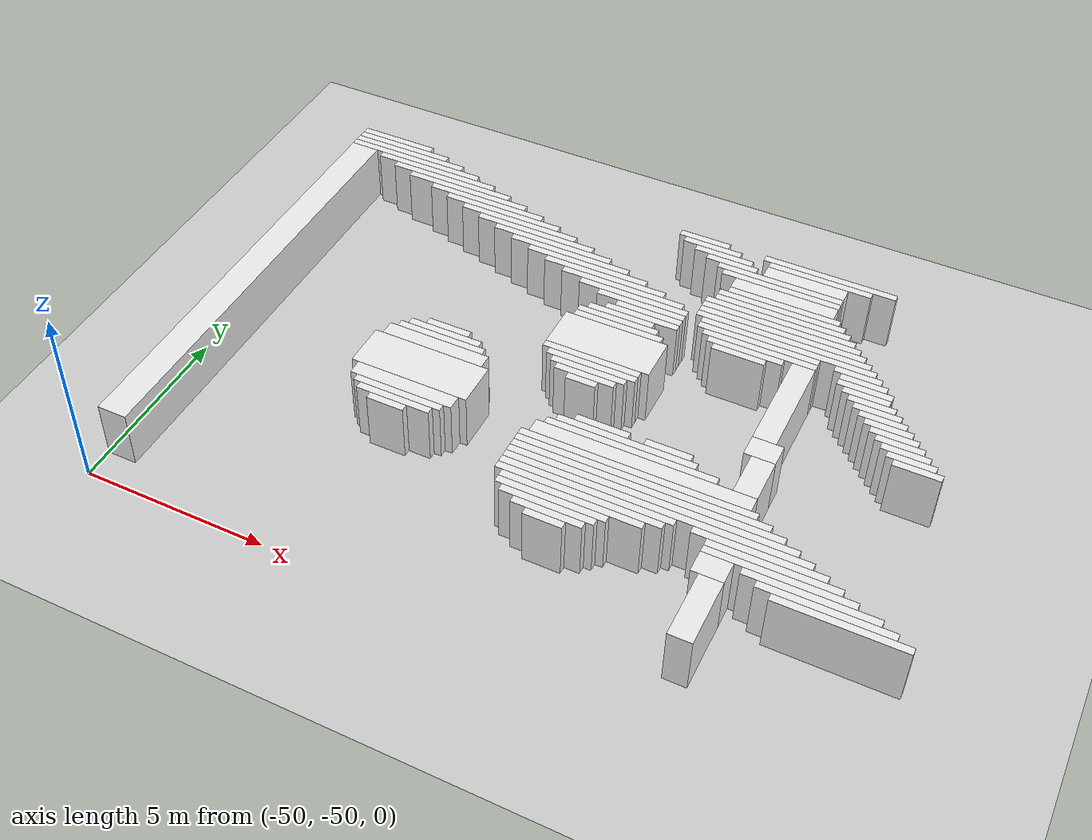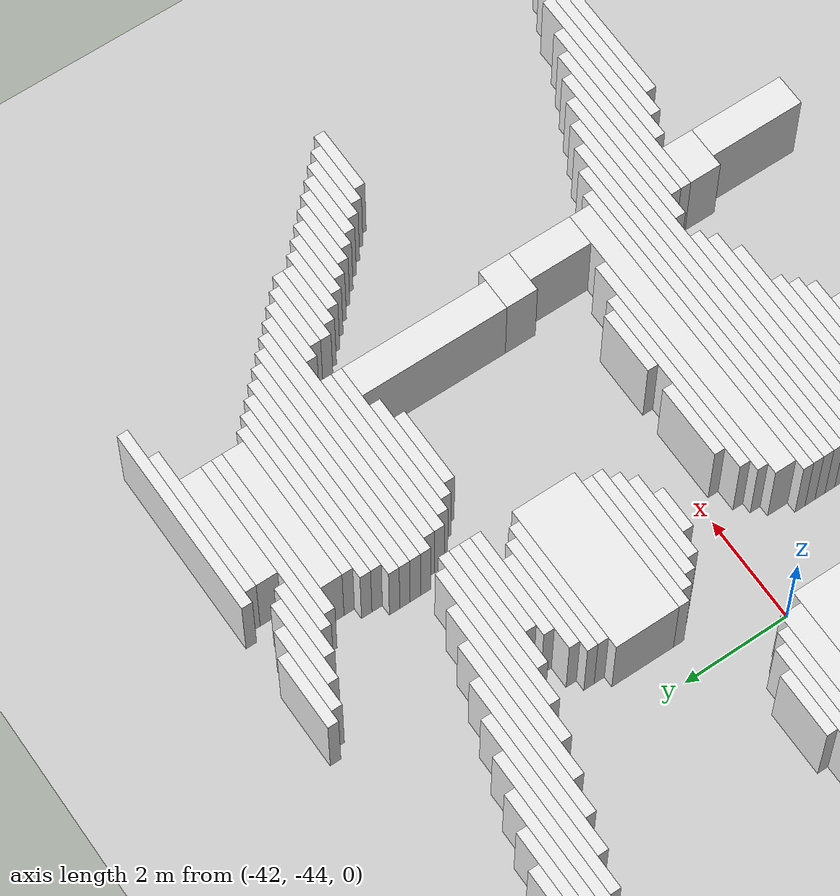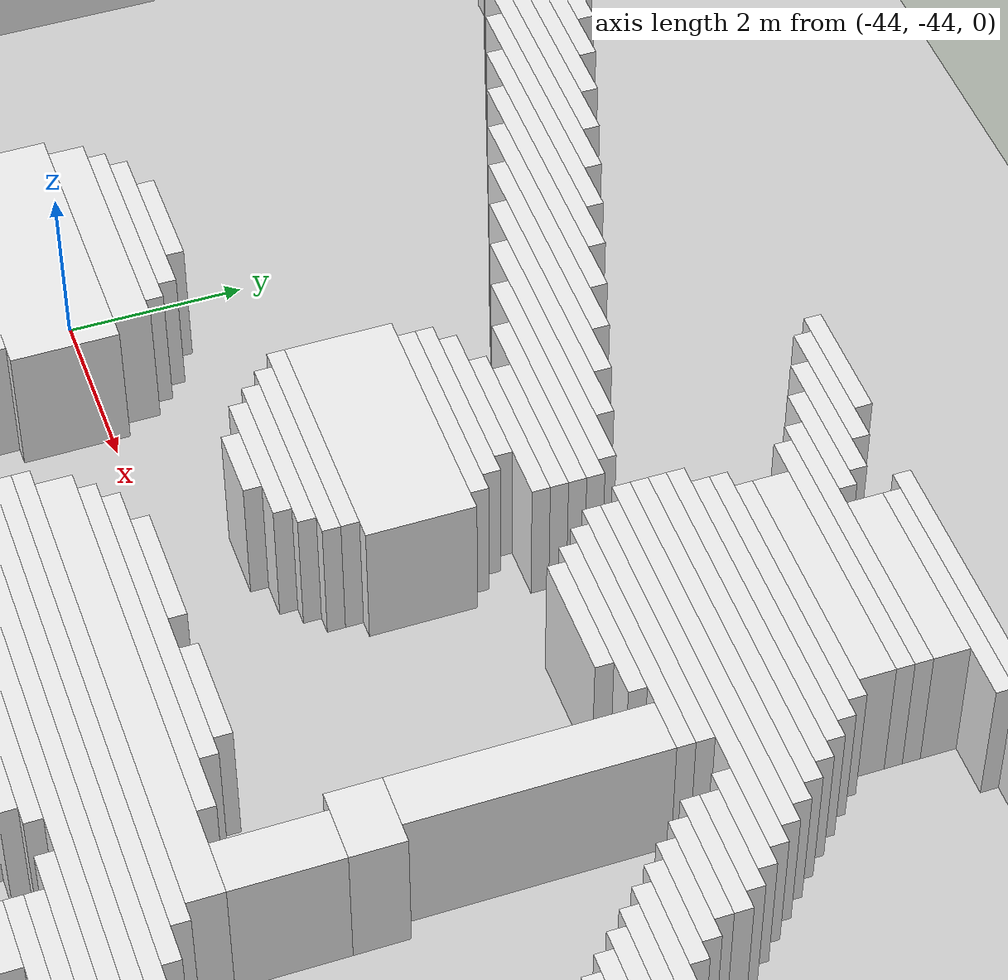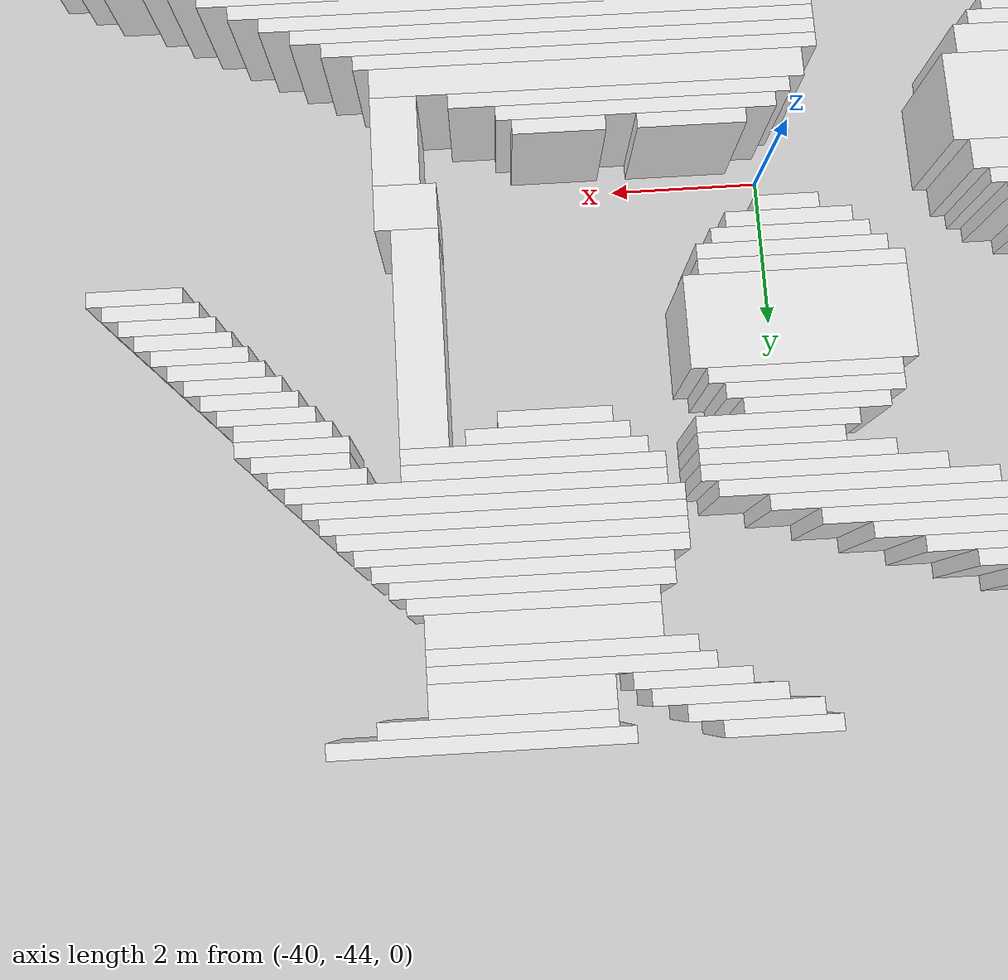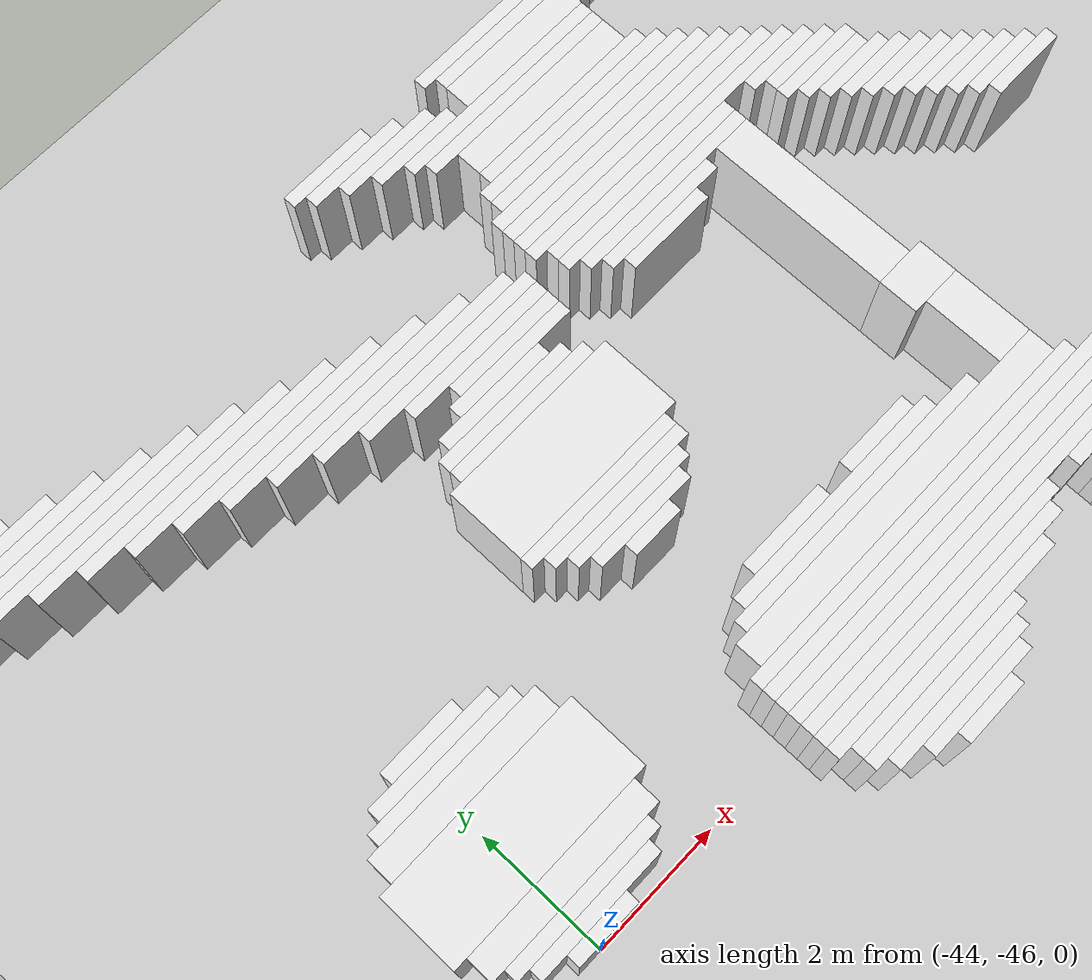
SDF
<sdf version="1.7">
 <world name="default">
  <model name="ground_plane">
   <static>1</static>
   <link name="link">
    <collision name="collision">
     <geometry><plane><normal>0 0 1</normal><size>120 120</size></plane></geometry>
    </collision>
    <visual name="visual">
     <geometry><plane><normal>0 0 1</normal><size>120 120</size></plane></geometry>
     <material>
      <script><uri>file://media/materials/scripts/gazebo.material</uri><name>Gazebo/Grey</name></script>
     </material>
    </visual>
   </link>
  </model>
  <model name="random_complex_03_model">
   <static>1</static>
   <link name="obs_2824">
    <pose>-48.9000 -36.5000 0.8000 0 0 0</pose>
    <collision name="obs_2824_col"><geometry><box><size>2.2000 0.2000 1.6000</size></box></geometry></collision>
    <visual name="obs_2824_vis">
     <geometry><box><size>2.2000 0.2000 1.6000</size></box></geometry>
     <material>
      <script><uri>file://media/materials/scripts/gazebo.material</uri><name>Gazebo/White</name></script>
     </material>
    </visual>
   </link>
   <link name="obs_2831">
    <pose>-48.6000 -36.7000 0.8000 0 0 0</pose>
    <collision name="obs_2831_col"><geometry><box><size>2.8000 0.2000 1.6000</size></box></geometry></collision>
    <visual name="obs_2831_vis">
     <geometry><box><size>2.8000 0.2000 1.6000</size></box></geometry>
     <material>
      <script><uri>file://media/materials/scripts/gazebo.material</uri><name>Gazebo/White</name></script>
     </material>
    </visual>
   </link>
   <link name="obs_2832">
    <pose>-39.3000 -36.7000 0.8000 0 0 0</pose>
    <collision name="obs_2832_col"><geometry><box><size>1.4000 0.2000 1.6000</size></box></geometry></collision>
    <visual name="obs_2832_vis">
     <geometry><box><size>1.4000 0.2000 1.6000</size></box></geometry>
     <material>
      <script><uri>file://media/materials/scripts/gazebo.material</uri><name>Gazebo/White</name></script>
     </material>
    </visual>
   </link>
   <link name="obs_2833">
    <pose>-35.8000 -36.7000 0.8000 0 0 0</pose>
    <collision name="obs_2833_col"><geometry><box><size>3.6000 0.2000 1.6000</size></box></geometry></collision>
    <visual name="obs_2833_vis">
     <geometry><box><size>3.6000 0.2000 1.6000</size></box></geometry>
     <material>
      <script><uri>file://media/materials/scripts/gazebo.material</uri><name>Gazebo/White</name></script>
     </material>
    </visual>
   </link>
   <link name="obs_2837">
    <pose>-48.3000 -36.9000 0.8000 0 0 0</pose>
    <collision name="obs_2837_col"><geometry><box><size>3.4000 0.2000 1.6000</size></box></geometry></collision>
    <visual name="obs_2837_vis">
     <geometry><box><size>3.4000 0.2000 1.6000</size></box></geometry>
     <material>
      <script><uri>file://media/materials/scripts/gazebo.material</uri><name>Gazebo/White</name></script>
     </material>
    </visual>
   </link>
   <link name="obs_2838">
    <pose>-39.0000 -36.9000 0.8000 0 0 0</pose>
    <collision name="obs_2838_col"><geometry><box><size>1.6000 0.2000 1.6000</size></box></geometry></collision>
    <visual name="obs_2838_vis">
     <geometry><box><size>1.6000 0.2000 1.6000</size></box></geometry>
     <material>
      <script><uri>file://media/materials/scripts/gazebo.material</uri><name>Gazebo/White</name></script>
     </material>
    </visual>
   </link>
   <link name="obs_2839">
    <pose>-36.0000 -36.9000 0.8000 0 0 0</pose>
    <collision name="obs_2839_col"><geometry><box><size>2.8000 0.2000 1.6000</size></box></geometry></collision>
    <visual name="obs_2839_vis">
     <geometry><box><size>2.8000 0.2000 1.6000</size></box></geometry>
     <material>
      <script><uri>file://media/materials/scripts/gazebo.material</uri><name>Gazebo/White</name></script>
     </material>
    </visual>
   </link>
   <link name="obs_2843">
    <pose>-48.0000 -37.1000 0.8000 0 0 0</pose>
    <collision name="obs_2843_col"><geometry><box><size>4.0000 0.2000 1.6000</size></box></geometry></collision>
    <visual name="obs_2843_vis">
     <geometry><box><size>4.0000 0.2000 1.6000</size></box></geometry>
     <material>
      <script><uri>file://media/materials/scripts/gazebo.material</uri><name>Gazebo/White</name></script>
     </material>
    </visual>
   </link>
   <link name="obs_2844">
    <pose>-38.6000 -37.1000 0.8000 0 0 0</pose>
    <collision name="obs_2844_col"><geometry><box><size>1.6000 0.2000 1.6000</size></box></geometry></collision>
    <visual name="obs_2844_vis">
     <geometry><box><size>1.6000 0.2000 1.6000</size></box></geometry>
     <material>
      <script><uri>file://media/materials/scripts/gazebo.material</uri><name>Gazebo/White</name></script>
     </material>
    </visual>
   </link>
   <link name="obs_2848">
    <pose>-36.3000 -37.2000 0.8000 0 0 0</pose>
    <collision name="obs_2848_col"><geometry><box><size>2.2000 0.4000 1.6000</size></box></geometry></collision>
    <visual name="obs_2848_vis">
     <geometry><box><size>2.2000 0.4000 1.6000</size></box></geometry>
     <material>
      <script><uri>file://media/materials/scripts/gazebo.material</uri><name>Gazebo/White</name></script>
     </material>
    </visual>
   </link>
   <link name="obs_2849">
    <pose>-47.2000 -37.3000 0.8000 0 0 0</pose>
    <collision name="obs_2849_col"><geometry><box><size>3.6000 0.2000 1.6000</size></box></geometry></collision>
    <visual name="obs_2849_vis">
     <geometry><box><size>3.6000 0.2000 1.6000</size></box></geometry>
     <material>
      <script><uri>file://media/materials/scripts/gazebo.material</uri><name>Gazebo/White</name></script>
     </material>
    </visual>
   </link>
   <link name="obs_2850">
    <pose>-38.3000 -37.3000 0.8000 0 0 0</pose>
    <collision name="obs_2850_col"><geometry><box><size>1.4000 0.2000 1.6000</size></box></geometry></collision>
    <visual name="obs_2850_vis">
     <geometry><box><size>1.4000 0.2000 1.6000</size></box></geometry>
     <material>
      <script><uri>file://media/materials/scripts/gazebo.material</uri><name>Gazebo/White</name></script>
     </material>
    </visual>
   </link>
   <link name="obs_2855">
    <pose>-46.6000 -37.5000 0.8000 0 0 0</pose>
    <collision name="obs_2855_col"><geometry><box><size>3.6000 0.2000 1.6000</size></box></geometry></collision>
    <visual name="obs_2855_vis">
     <geometry><box><size>3.6000 0.2000 1.6000</size></box></geometry>
     <material>
      <script><uri>file://media/materials/scripts/gazebo.material</uri><name>Gazebo/White</name></script>
     </material>
    </visual>
   </link>
   <link name="obs_2856">
    <pose>-36.9000 -37.5000 0.8000 0 0 0</pose>
    <collision name="obs_2856_col"><geometry><box><size>3.4000 0.2000 1.6000</size></box></geometry></collision>
    <visual name="obs_2856_vis">
     <geometry><box><size>3.4000 0.2000 1.6000</size></box></geometry>
     <material>
      <script><uri>file://media/materials/scripts/gazebo.material</uri><name>Gazebo/White</name></script>
     </material>
    </visual>
   </link>
   <link name="obs_2861">
    <pose>-46.0000 -37.7000 0.8000 0 0 0</pose>
    <collision name="obs_2861_col"><geometry><box><size>3.6000 0.2000 1.6000</size></box></geometry></collision>
    <visual name="obs_2861_vis">
     <geometry><box><size>3.6000 0.2000 1.6000</size></box></geometry>
     <material>
      <script><uri>file://media/materials/scripts/gazebo.material</uri><name>Gazebo/White</name></script>
     </material>
    </visual>
   </link>
   <link name="obs_2862">
    <pose>-36.8000 -37.7000 0.8000 0 0 0</pose>
    <collision name="obs_2862_col"><geometry><box><size>3.2000 0.2000 1.6000</size></box></geometry></collision>
    <visual name="obs_2862_vis">
     <geometry><box><size>3.2000 0.2000 1.6000</size></box></geometry>
     <material>
      <script><uri>file://media/materials/scripts/gazebo.material</uri><name>Gazebo/White</name></script>
     </material>
    </visual>
   </link>
   <link name="obs_2867">
    <pose>-45.3000 -37.9000 0.8000 0 0 0</pose>
    <collision name="obs_2867_col"><geometry><box><size>3.4000 0.2000 1.6000</size></box></geometry></collision>
    <visual name="obs_2867_vis">
     <geometry><box><size>3.4000 0.2000 1.6000</size></box></geometry>
     <material>
      <script><uri>file://media/materials/scripts/gazebo.material</uri><name>Gazebo/White</name></script>
     </material>
    </visual>
   </link>
   <link name="obs_2871">
    <pose>-36.6000 -38.0000 0.8000 0 0 0</pose>
    <collision name="obs_2871_col"><geometry><box><size>2.8000 0.4000 1.6000</size></box></geometry></collision>
    <visual name="obs_2871_vis">
     <geometry><box><size>2.8000 0.4000 1.6000</size></box></geometry>
     <material>
      <script><uri>file://media/materials/scripts/gazebo.material</uri><name>Gazebo/White</name></script>
     </material>
    </visual>
   </link>
   <link name="obs_2873">
    <pose>-44.7000 -38.1000 0.8000 0 0 0</pose>
    <collision name="obs_2873_col"><geometry><box><size>3.4000 0.2000 1.6000</size></box></geometry></collision>
    <visual name="obs_2873_vis">
     <geometry><box><size>3.4000 0.2000 1.6000</size></box></geometry>
     <material>
      <script><uri>file://media/materials/scripts/gazebo.material</uri><name>Gazebo/White</name></script>
     </material>
    </visual>
   </link>
   <link name="obs_2878">
    <pose>-44.1000 -38.3000 0.8000 0 0 0</pose>
    <collision name="obs_2878_col"><geometry><box><size>3.4000 0.2000 1.6000</size></box></geometry></collision>
    <visual name="obs_2878_vis">
     <geometry><box><size>3.4000 0.2000 1.6000</size></box></geometry>
     <material>
      <script><uri>file://media/materials/scripts/gazebo.material</uri><name>Gazebo/White</name></script>
     </material>
    </visual>
   </link>
   <link name="obs_2879">
    <pose>-36.5000 -38.3000 0.8000 0 0 0</pose>
    <collision name="obs_2879_col"><geometry><box><size>3.0000 0.2000 1.6000</size></box></geometry></collision>
    <visual name="obs_2879_vis">
     <geometry><box><size>3.0000 0.2000 1.6000</size></box></geometry>
     <material>
      <script><uri>file://media/materials/scripts/gazebo.material</uri><name>Gazebo/White</name></script>
     </material>
    </visual>
   </link>
   <link name="obs_2884">
    <pose>-43.5000 -38.5000 0.8000 0 0 0</pose>
    <collision name="obs_2884_col"><geometry><box><size>3.4000 0.2000 1.6000</size></box></geometry></collision>
    <visual name="obs_2884_vis">
     <geometry><box><size>3.4000 0.2000 1.6000</size></box></geometry>
     <material>
      <script><uri>file://media/materials/scripts/gazebo.material</uri><name>Gazebo/White</name></script>
     </material>
    </visual>
   </link>
   <link name="obs_2885">
    <pose>-36.5000 -38.5000 0.8000 0 0 0</pose>
    <collision name="obs_2885_col"><geometry><box><size>3.4000 0.2000 1.6000</size></box></geometry></collision>
    <visual name="obs_2885_vis">
     <geometry><box><size>3.4000 0.2000 1.6000</size></box></geometry>
     <material>
      <script><uri>file://media/materials/scripts/gazebo.material</uri><name>Gazebo/White</name></script>
     </material>
    </visual>
   </link>
   <link name="obs_2891">
    <pose>-42.9000 -38.7000 0.8000 0 0 0</pose>
    <collision name="obs_2891_col"><geometry><box><size>3.4000 0.2000 1.6000</size></box></geometry></collision>
    <visual name="obs_2891_vis">
     <geometry><box><size>3.4000 0.2000 1.6000</size></box></geometry>
     <material>
      <script><uri>file://media/materials/scripts/gazebo.material</uri><name>Gazebo/White</name></script>
     </material>
    </visual>
   </link>
   <link name="obs_2892">
    <pose>-36.4000 -38.7000 0.8000 0 0 0</pose>
    <collision name="obs_2892_col"><geometry><box><size>3.6000 0.2000 1.6000</size></box></geometry></collision>
    <visual name="obs_2892_vis">
     <geometry><box><size>3.6000 0.2000 1.6000</size></box></geometry>
     <material>
      <script><uri>file://media/materials/scripts/gazebo.material</uri><name>Gazebo/White</name></script>
     </material>
    </visual>
   </link>
   <link name="obs_2896">
    <pose>-42.3000 -38.9000 0.8000 0 0 0</pose>
    <collision name="obs_2896_col"><geometry><box><size>3.4000 0.2000 1.6000</size></box></geometry></collision>
    <visual name="obs_2896_vis">
     <geometry><box><size>3.4000 0.2000 1.6000</size></box></geometry>
     <material>
      <script><uri>file://media/materials/scripts/gazebo.material</uri><name>Gazebo/White</name></script>
     </material>
    </visual>
   </link>
   <link name="obs_2897">
    <pose>-36.4000 -38.9000 0.8000 0 0 0</pose>
    <collision name="obs_2897_col"><geometry><box><size>4.0000 0.2000 1.6000</size></box></geometry></collision>
    <visual name="obs_2897_vis">
     <geometry><box><size>4.0000 0.2000 1.6000</size></box></geometry>
     <material>
      <script><uri>file://media/materials/scripts/gazebo.material</uri><name>Gazebo/White</name></script>
     </material>
    </visual>
   </link>
   <link name="obs_2901">
    <pose>-41.7000 -39.1000 0.8000 0 0 0</pose>
    <collision name="obs_2901_col"><geometry><box><size>3.4000 0.2000 1.6000</size></box></geometry></collision>
    <visual name="obs_2901_vis">
     <geometry><box><size>3.4000 0.2000 1.6000</size></box></geometry>
     <material>
      <script><uri>file://media/materials/scripts/gazebo.material</uri><name>Gazebo/White</name></script>
     </material>
    </visual>
   </link>
   <link name="obs_2902">
    <pose>-36.3000 -39.1000 0.8000 0 0 0</pose>
    <collision name="obs_2902_col"><geometry><box><size>4.2000 0.2000 1.6000</size></box></geometry></collision>
    <visual name="obs_2902_vis">
     <geometry><box><size>4.2000 0.2000 1.6000</size></box></geometry>
     <material>
      <script><uri>file://media/materials/scripts/gazebo.material</uri><name>Gazebo/White</name></script>
     </material>
    </visual>
   </link>
   <link name="obs_2905">
    <pose>-41.1000 -39.3000 0.8000 0 0 0</pose>
    <collision name="obs_2905_col"><geometry><box><size>3.4000 0.2000 1.6000</size></box></geometry></collision>
    <visual name="obs_2905_vis">
     <geometry><box><size>3.4000 0.2000 1.6000</size></box></geometry>
     <material>
      <script><uri>file://media/materials/scripts/gazebo.material</uri><name>Gazebo/White</name></script>
     </material>
    </visual>
   </link>
   <link name="obs_2906">
    <pose>-36.2000 -39.3000 0.8000 0 0 0</pose>
    <collision name="obs_2906_col"><geometry><box><size>4.4000 0.2000 1.6000</size></box></geometry></collision>
    <visual name="obs_2906_vis">
     <geometry><box><size>4.4000 0.2000 1.6000</size></box></geometry>
     <material>
      <script><uri>file://media/materials/scripts/gazebo.material</uri><name>Gazebo/White</name></script>
     </material>
    </visual>
   </link>
   <link name="obs_2908">
    <pose>-40.5000 -39.5000 0.8000 0 0 0</pose>
    <collision name="obs_2908_col"><geometry><box><size>3.4000 0.2000 1.6000</size></box></geometry></collision>
    <visual name="obs_2908_vis">
     <geometry><box><size>3.4000 0.2000 1.6000</size></box></geometry>
     <material>
      <script><uri>file://media/materials/scripts/gazebo.material</uri><name>Gazebo/White</name></script>
     </material>
    </visual>
   </link>
   <link name="obs_2909">
    <pose>-36.1000 -39.5000 0.8000 0 0 0</pose>
    <collision name="obs_2909_col"><geometry><box><size>4.6000 0.2000 1.6000</size></box></geometry></collision>
    <visual name="obs_2909_vis">
     <geometry><box><size>4.6000 0.2000 1.6000</size></box></geometry>
     <material>
      <script><uri>file://media/materials/scripts/gazebo.material</uri><name>Gazebo/White</name></script>
     </material>
    </visual>
   </link>
   <link name="obs_2915">
    <pose>-40.1000 -39.7000 0.8000 0 0 0</pose>
    <collision name="obs_2915_col"><geometry><box><size>3.0000 0.2000 1.6000</size></box></geometry></collision>
    <visual name="obs_2915_vis">
     <geometry><box><size>3.0000 0.2000 1.6000</size></box></geometry>
     <material>
      <script><uri>file://media/materials/scripts/gazebo.material</uri><name>Gazebo/White</name></script>
     </material>
    </visual>
   </link>
   <link name="obs_2916">
    <pose>-35.9000 -39.7000 0.8000 0 0 0</pose>
    <collision name="obs_2916_col"><geometry><box><size>4.6000 0.2000 1.6000</size></box></geometry></collision>
    <visual name="obs_2916_vis">
     <geometry><box><size>4.6000 0.2000 1.6000</size></box></geometry>
     <material>
      <script><uri>file://media/materials/scripts/gazebo.material</uri><name>Gazebo/White</name></script>
     </material>
    </visual>
   </link>
   <link name="obs_2919">
    <pose>-39.8000 -39.9000 0.8000 0 0 0</pose>
    <collision name="obs_2919_col"><geometry><box><size>2.4000 0.2000 1.6000</size></box></geometry></collision>
    <visual name="obs_2919_vis">
     <geometry><box><size>2.4000 0.2000 1.6000</size></box></geometry>
     <material>
      <script><uri>file://media/materials/scripts/gazebo.material</uri><name>Gazebo/White</name></script>
     </material>
    </visual>
   </link>
   <link name="obs_2920">
    <pose>-36.6000 -39.9000 0.8000 0 0 0</pose>
    <collision name="obs_2920_col"><geometry><box><size>3.2000 0.2000 1.6000</size></box></geometry></collision>
    <visual name="obs_2920_vis">
     <geometry><box><size>3.2000 0.2000 1.6000</size></box></geometry>
     <material>
      <script><uri>file://media/materials/scripts/gazebo.material</uri><name>Gazebo/White</name></script>
     </material>
    </visual>
   </link>
   <link name="obs_2921">
    <pose>-34.0000 -39.9000 0.8000 0 0 0</pose>
    <collision name="obs_2921_col"><geometry><box><size>1.2000 0.2000 1.6000</size></box></geometry></collision>
    <visual name="obs_2921_vis">
     <geometry><box><size>1.2000 0.2000 1.6000</size></box></geometry>
     <material>
      <script><uri>file://media/materials/scripts/gazebo.material</uri><name>Gazebo/White</name></script>
     </material>
    </visual>
   </link>
   <link name="obs_2926">
    <pose>-39.5000 -40.1000 0.8000 0 0 0</pose>
    <collision name="obs_2926_col"><geometry><box><size>1.8000 0.2000 1.6000</size></box></geometry></collision>
    <visual name="obs_2926_vis">
     <geometry><box><size>1.8000 0.2000 1.6000</size></box></geometry>
     <material>
      <script><uri>file://media/materials/scripts/gazebo.material</uri><name>Gazebo/White</name></script>
     </material>
    </visual>
   </link>
   <link name="obs_2927">
    <pose>-36.5000 -40.1000 0.8000 0 0 0</pose>
    <collision name="obs_2927_col"><geometry><box><size>3.0000 0.2000 1.6000</size></box></geometry></collision>
    <visual name="obs_2927_vis">
     <geometry><box><size>3.0000 0.2000 1.6000</size></box></geometry>
     <material>
      <script><uri>file://media/materials/scripts/gazebo.material</uri><name>Gazebo/White</name></script>
     </material>
    </visual>
   </link>
   <link name="obs_2928">
    <pose>-33.8000 -40.1000 0.8000 0 0 0</pose>
    <collision name="obs_2928_col"><geometry><box><size>1.2000 0.2000 1.6000</size></box></geometry></collision>
    <visual name="obs_2928_vis">
     <geometry><box><size>1.2000 0.2000 1.6000</size></box></geometry>
     <material>
      <script><uri>file://media/materials/scripts/gazebo.material</uri><name>Gazebo/White</name></script>
     </material>
    </visual>
   </link>
   <link name="obs_2932">
    <pose>-39.6000 -40.3000 0.8000 0 0 0</pose>
    <collision name="obs_2932_col"><geometry><box><size>2.0000 0.2000 1.6000</size></box></geometry></collision>
    <visual name="obs_2932_vis">
     <geometry><box><size>2.0000 0.2000 1.6000</size></box></geometry>
     <material>
      <script><uri>file://media/materials/scripts/gazebo.material</uri><name>Gazebo/White</name></script>
     </material>
    </visual>
   </link>
   <link name="obs_2933">
    <pose>-36.8000 -40.3000 0.8000 0 0 0</pose>
    <collision name="obs_2933_col"><geometry><box><size>2.0000 0.2000 1.6000</size></box></geometry></collision>
    <visual name="obs_2933_vis">
     <geometry><box><size>2.0000 0.2000 1.6000</size></box></geometry>
     <material>
      <script><uri>file://media/materials/scripts/gazebo.material</uri><name>Gazebo/White</name></script>
     </material>
    </visual>
   </link>
   <link name="obs_2934">
    <pose>-33.7000 -40.3000 0.8000 0 0 0</pose>
    <collision name="obs_2934_col"><geometry><box><size>1.4000 0.2000 1.6000</size></box></geometry></collision>
    <visual name="obs_2934_vis">
     <geometry><box><size>1.4000 0.2000 1.6000</size></box></geometry>
     <material>
      <script><uri>file://media/materials/scripts/gazebo.material</uri><name>Gazebo/White</name></script>
     </material>
    </visual>
   </link>
   <link name="obs_2938">
    <pose>-40.1000 -40.5000 0.8000 0 0 0</pose>
    <collision name="obs_2938_col"><geometry><box><size>1.8000 0.2000 1.6000</size></box></geometry></collision>
    <visual name="obs_2938_vis">
     <geometry><box><size>1.8000 0.2000 1.6000</size></box></geometry>
     <material>
      <script><uri>file://media/materials/scripts/gazebo.material</uri><name>Gazebo/White</name></script>
     </material>
    </visual>
   </link>
   <link name="obs_2939">
    <pose>-36.9000 -40.5000 0.8000 0 0 0</pose>
    <collision name="obs_2939_col"><geometry><box><size>1.4000 0.2000 1.6000</size></box></geometry></collision>
    <visual name="obs_2939_vis">
     <geometry><box><size>1.4000 0.2000 1.6000</size></box></geometry>
     <material>
      <script><uri>file://media/materials/scripts/gazebo.material</uri><name>Gazebo/White</name></script>
     </material>
    </visual>
   </link>
   <link name="obs_2940">
    <pose>-33.6000 -40.5000 0.8000 0 0 0</pose>
    <collision name="obs_2940_col"><geometry><box><size>1.2000 0.2000 1.6000</size></box></geometry></collision>
    <visual name="obs_2940_vis">
     <geometry><box><size>1.2000 0.2000 1.6000</size></box></geometry>
     <material>
      <script><uri>file://media/materials/scripts/gazebo.material</uri><name>Gazebo/White</name></script>
     </material>
    </visual>
   </link>
   <link name="obs_2944">
    <pose>-40.1000 -40.7000 0.8000 0 0 0</pose>
    <collision name="obs_2944_col"><geometry><box><size>2.2000 0.2000 1.6000</size></box></geometry></collision>
    <visual name="obs_2944_vis">
     <geometry><box><size>2.2000 0.2000 1.6000</size></box></geometry>
     <material>
      <script><uri>file://media/materials/scripts/gazebo.material</uri><name>Gazebo/White</name></script>
     </material>
    </visual>
   </link>
   <link name="obs_2945">
    <pose>-33.4000 -40.7000 0.8000 0 0 0</pose>
    <collision name="obs_2945_col"><geometry><box><size>1.2000 0.2000 1.6000</size></box></geometry></collision>
    <visual name="obs_2945_vis">
     <geometry><box><size>1.2000 0.2000 1.6000</size></box></geometry>
     <material>
      <script><uri>file://media/materials/scripts/gazebo.material</uri><name>Gazebo/White</name></script>
     </material>
    </visual>
   </link>
   <link name="obs_2949">
    <pose>-40.0000 -40.9000 0.8000 0 0 0</pose>
    <collision name="obs_2949_col"><geometry><box><size>2.4000 0.2000 1.6000</size></box></geometry></collision>
    <visual name="obs_2949_vis">
     <geometry><box><size>2.4000 0.2000 1.6000</size></box></geometry>
     <material>
      <script><uri>file://media/materials/scripts/gazebo.material</uri><name>Gazebo/White</name></script>
     </material>
    </visual>
   </link>
   <link name="obs_2950">
    <pose>-33.2000 -40.9000 0.8000 0 0 0</pose>
    <collision name="obs_2950_col"><geometry><box><size>1.2000 0.2000 1.6000</size></box></geometry></collision>
    <visual name="obs_2950_vis">
     <geometry><box><size>1.2000 0.2000 1.6000</size></box></geometry>
     <material>
      <script><uri>file://media/materials/scripts/gazebo.material</uri><name>Gazebo/White</name></script>
     </material>
    </visual>
   </link>
   <link name="obs_2955">
    <pose>-33.0000 -41.1000 0.8000 0 0 0</pose>
    <collision name="obs_2955_col"><geometry><box><size>1.2000 0.2000 1.6000</size></box></geometry></collision>
    <visual name="obs_2955_vis">
     <geometry><box><size>1.2000 0.2000 1.6000</size></box></geometry>
     <material>
      <script><uri>file://media/materials/scripts/gazebo.material</uri><name>Gazebo/White</name></script>
     </material>
    </visual>
   </link>
   <link name="obs_2959">
    <pose>-32.8000 -41.3000 0.8000 0 0 0</pose>
    <collision name="obs_2959_col"><geometry><box><size>1.2000 0.2000 1.6000</size></box></geometry></collision>
    <visual name="obs_2959_vis">
     <geometry><box><size>1.2000 0.2000 1.6000</size></box></geometry>
     <material>
      <script><uri>file://media/materials/scripts/gazebo.material</uri><name>Gazebo/White</name></script>
     </material>
    </visual>
   </link>
   <link name="obs_2963">
    <pose>-32.6000 -41.5000 0.8000 0 0 0</pose>
    <collision name="obs_2963_col"><geometry><box><size>1.2000 0.2000 1.6000</size></box></geometry></collision>
    <visual name="obs_2963_vis">
     <geometry><box><size>1.2000 0.2000 1.6000</size></box></geometry>
     <material>
      <script><uri>file://media/materials/scripts/gazebo.material</uri><name>Gazebo/White</name></script>
     </material>
    </visual>
   </link>
   <link name="obs_2966">
    <pose>-32.4000 -41.7000 0.8000 0 0 0</pose>
    <collision name="obs_2966_col"><geometry><box><size>1.2000 0.2000 1.6000</size></box></geometry></collision>
    <visual name="obs_2966_vis">
     <geometry><box><size>1.2000 0.2000 1.6000</size></box></geometry>
     <material>
      <script><uri>file://media/materials/scripts/gazebo.material</uri><name>Gazebo/White</name></script>
     </material>
    </visual>
   </link>
   <link name="obs_2969">
    <pose>-32.2000 -41.9000 0.8000 0 0 0</pose>
    <collision name="obs_2969_col"><geometry><box><size>1.2000 0.2000 1.6000</size></box></geometry></collision>
    <visual name="obs_2969_vis">
     <geometry><box><size>1.2000 0.2000 1.6000</size></box></geometry>
     <material>
      <script><uri>file://media/materials/scripts/gazebo.material</uri><name>Gazebo/White</name></script>
     </material>
    </visual>
   </link>
   <link name="obs_2972">
    <pose>-40.0000 -41.6000 0.8000 0 0 0</pose>
    <collision name="obs_2972_col"><geometry><box><size>2.8000 1.2000 1.6000</size></box></geometry></collision>
    <visual name="obs_2972_vis">
     <geometry><box><size>2.8000 1.2000 1.6000</size></box></geometry>
     <material>
      <script><uri>file://media/materials/scripts/gazebo.material</uri><name>Gazebo/White</name></script>
     </material>
    </visual>
   </link>
   <link name="obs_2974">
    <pose>-32.0000 -42.1000 0.8000 0 0 0</pose>
    <collision name="obs_2974_col"><geometry><box><size>1.2000 0.2000 1.6000</size></box></geometry></collision>
    <visual name="obs_2974_vis">
     <geometry><box><size>1.2000 0.2000 1.6000</size></box></geometry>
     <material>
      <script><uri>file://media/materials/scripts/gazebo.material</uri><name>Gazebo/White</name></script>
     </material>
    </visual>
   </link>
   <link name="obs_2977">
    <pose>-40.1000 -42.3000 0.8000 0 0 0</pose>
    <collision name="obs_2977_col"><geometry><box><size>2.6000 0.2000 1.6000</size></box></geometry></collision>
    <visual name="obs_2977_vis">
     <geometry><box><size>2.6000 0.2000 1.6000</size></box></geometry>
     <material>
      <script><uri>file://media/materials/scripts/gazebo.material</uri><name>Gazebo/White</name></script>
     </material>
    </visual>
   </link>
   <link name="obs_2978">
    <pose>-31.8000 -42.3000 0.8000 0 0 0</pose>
    <collision name="obs_2978_col"><geometry><box><size>1.2000 0.2000 1.6000</size></box></geometry></collision>
    <visual name="obs_2978_vis">
     <geometry><box><size>1.2000 0.2000 1.6000</size></box></geometry>
     <material>
      <script><uri>file://media/materials/scripts/gazebo.material</uri><name>Gazebo/White</name></script>
     </material>
    </visual>
   </link>
   <link name="obs_2982">
    <pose>-40.0000 -42.5000 0.8000 0 0 0</pose>
    <collision name="obs_2982_col"><geometry><box><size>2.4000 0.2000 1.6000</size></box></geometry></collision>
    <visual name="obs_2982_vis">
     <geometry><box><size>2.4000 0.2000 1.6000</size></box></geometry>
     <material>
      <script><uri>file://media/materials/scripts/gazebo.material</uri><name>Gazebo/White</name></script>
     </material>
    </visual>
   </link>
   <link name="obs_2987">
    <pose>-40.0000 -42.7000 0.8000 0 0 0</pose>
    <collision name="obs_2987_col"><geometry><box><size>2.0000 0.2000 1.6000</size></box></geometry></collision>
    <visual name="obs_2987_vis">
     <geometry><box><size>2.0000 0.2000 1.6000</size></box></geometry>
     <material>
      <script><uri>file://media/materials/scripts/gazebo.material</uri><name>Gazebo/White</name></script>
     </material>
    </visual>
   </link>
   <link name="obs_2993">
    <pose>-35.3000 -41.6000 0.8000 0 0 0</pose>
    <collision name="obs_2993_col"><geometry><box><size>0.6000 2.8000 1.6000</size></box></geometry></collision>
    <visual name="obs_2993_vis">
     <geometry><box><size>0.6000 2.8000 1.6000</size></box></geometry>
     <material>
      <script><uri>file://media/materials/scripts/gazebo.material</uri><name>Gazebo/White</name></script>
     </material>
    </visual>
   </link>
   <link name="obs_2994">
    <pose>-43.8000 -42.9000 0.8000 0 0 0</pose>
    <collision name="obs_2994_col"><geometry><box><size>1.2000 0.2000 1.6000</size></box></geometry></collision>
    <visual name="obs_2994_vis">
     <geometry><box><size>1.2000 0.2000 1.6000</size></box></geometry>
     <material>
      <script><uri>file://media/materials/scripts/gazebo.material</uri><name>Gazebo/White</name></script>
     </material>
    </visual>
   </link>
   <link name="obs_2995">
    <pose>-40.0000 -42.9000 0.8000 0 0 0</pose>
    <collision name="obs_2995_col"><geometry><box><size>1.6000 0.2000 1.6000</size></box></geometry></collision>
    <visual name="obs_2995_vis">
     <geometry><box><size>1.6000 0.2000 1.6000</size></box></geometry>
     <material>
      <script><uri>file://media/materials/scripts/gazebo.material</uri><name>Gazebo/White</name></script>
     </material>
    </visual>
   </link>
   <link name="obs_2999">
    <pose>-43.8000 -43.1000 0.8000 0 0 0</pose>
    <collision name="obs_2999_col"><geometry><box><size>2.0000 0.2000 1.6000</size></box></geometry></collision>
    <visual name="obs_2999_vis">
     <geometry><box><size>2.0000 0.2000 1.6000</size></box></geometry>
     <material>
      <script><uri>file://media/materials/scripts/gazebo.material</uri><name>Gazebo/White</name></script>
     </material>
    </visual>
   </link>
   <link name="obs_3000">
    <pose>-40.0000 -43.1000 0.8000 0 0 0</pose>
    <collision name="obs_3000_col"><geometry><box><size>0.8000 0.2000 1.6000</size></box></geometry></collision>
    <visual name="obs_3000_vis">
     <geometry><box><size>0.8000 0.2000 1.6000</size></box></geometry>
     <material>
      <script><uri>file://media/materials/scripts/gazebo.material</uri><name>Gazebo/White</name></script>
     </material>
    </visual>
   </link>
   <link name="obs_3004">
    <pose>-43.8000 -43.3000 0.8000 0 0 0</pose>
    <collision name="obs_3004_col"><geometry><box><size>2.4000 0.2000 1.6000</size></box></geometry></collision>
    <visual name="obs_3004_vis">
     <geometry><box><size>2.4000 0.2000 1.6000</size></box></geometry>
     <material>
      <script><uri>file://media/materials/scripts/gazebo.material</uri><name>Gazebo/White</name></script>
     </material>
    </visual>
   </link>
   <link name="obs_3008">
    <pose>-35.2000 -43.3000 0.8000 0 0 0</pose>
    <collision name="obs_3008_col"><geometry><box><size>0.8000 0.6000 1.6000</size></box></geometry></collision>
    <visual name="obs_3008_vis">
     <geometry><box><size>0.8000 0.6000 1.6000</size></box></geometry>
     <material>
      <script><uri>file://media/materials/scripts/gazebo.material</uri><name>Gazebo/White</name></script>
     </material>
    </visual>
   </link>
   <link name="obs_3013">
    <pose>-43.8000 -43.6000 0.8000 0 0 0</pose>
    <collision name="obs_3013_col"><geometry><box><size>2.8000 0.4000 1.6000</size></box></geometry></collision>
    <visual name="obs_3013_vis">
     <geometry><box><size>2.8000 0.4000 1.6000</size></box></geometry>
     <material>
      <script><uri>file://media/materials/scripts/gazebo.material</uri><name>Gazebo/White</name></script>
     </material>
    </visual>
   </link>
   <link name="obs_3027">
    <pose>-38.9000 -44.3000 0.8000 0 0 0</pose>
    <collision name="obs_3027_col"><geometry><box><size>1.4000 0.2000 1.6000</size></box></geometry></collision>
    <visual name="obs_3027_vis">
     <geometry><box><size>1.4000 0.2000 1.6000</size></box></geometry>
     <material>
      <script><uri>file://media/materials/scripts/gazebo.material</uri><name>Gazebo/White</name></script>
     </material>
    </visual>
   </link>
   <link name="obs_3028">
    <pose>-37.2000 -44.3000 0.8000 0 0 0</pose>
    <collision name="obs_3028_col"><geometry><box><size>1.2000 0.2000 1.6000</size></box></geometry></collision>
    <visual name="obs_3028_vis">
     <geometry><box><size>1.2000 0.2000 1.6000</size></box></geometry>
     <material>
      <script><uri>file://media/materials/scripts/gazebo.material</uri><name>Gazebo/White</name></script>
     </material>
    </visual>
   </link>
   <link name="obs_3034">
    <pose>-38.2000 -44.5000 0.8000 0 0 0</pose>
    <collision name="obs_3034_col"><geometry><box><size>3.6000 0.2000 1.6000</size></box></geometry></collision>
    <visual name="obs_3034_vis">
     <geometry><box><size>3.6000 0.2000 1.6000</size></box></geometry>
     <material>
      <script><uri>file://media/materials/scripts/gazebo.material</uri><name>Gazebo/White</name></script>
     </material>
    </visual>
   </link>
   <link name="obs_3040">
    <pose>-35.1000 -44.2000 0.8000 0 0 0</pose>
    <collision name="obs_3040_col"><geometry><box><size>0.6000 1.2000 1.6000</size></box></geometry></collision>
    <visual name="obs_3040_vis">
     <geometry><box><size>0.6000 1.2000 1.6000</size></box></geometry>
     <material>
      <script><uri>file://media/materials/scripts/gazebo.material</uri><name>Gazebo/White</name></script>
     </material>
    </visual>
   </link>
   <link name="obs_3041">
    <pose>-38.0000 -44.7000 0.8000 0 0 0</pose>
    <collision name="obs_3041_col"><geometry><box><size>4.4000 0.2000 1.6000</size></box></geometry></collision>
    <visual name="obs_3041_vis">
     <geometry><box><size>4.4000 0.2000 1.6000</size></box></geometry>
     <material>
      <script><uri>file://media/materials/scripts/gazebo.material</uri><name>Gazebo/White</name></script>
     </material>
    </visual>
   </link>
   <link name="obs_3046">
    <pose>-43.8000 -44.4000 0.8000 0 0 0</pose>
    <collision name="obs_3046_col"><geometry><box><size>3.2000 1.2000 1.6000</size></box></geometry></collision>
    <visual name="obs_3046_vis">
     <geometry><box><size>3.2000 1.2000 1.6000</size></box></geometry>
     <material>
      <script><uri>file://media/materials/scripts/gazebo.material</uri><name>Gazebo/White</name></script>
     </material>
    </visual>
   </link>
   <link name="obs_3051">
    <pose>-37.6000 -45.0000 0.8000 0 0 0</pose>
    <collision name="obs_3051_col"><geometry><box><size>5.6000 0.4000 1.6000</size></box></geometry></collision>
    <visual name="obs_3051_vis">
     <geometry><box><size>5.6000 0.4000 1.6000</size></box></geometry>
     <material>
      <script><uri>file://media/materials/scripts/gazebo.material</uri><name>Gazebo/White</name></script>
     </material>
    </visual>
   </link>
   <link name="obs_3056">
    <pose>-43.8000 -45.2000 0.8000 0 0 0</pose>
    <collision name="obs_3056_col"><geometry><box><size>2.8000 0.4000 1.6000</size></box></geometry></collision>
    <visual name="obs_3056_vis">
     <geometry><box><size>2.8000 0.4000 1.6000</size></box></geometry>
     <material>
      <script><uri>file://media/materials/scripts/gazebo.material</uri><name>Gazebo/White</name></script>
     </material>
    </visual>
   </link>
   <link name="obs_3057">
    <pose>-37.6000 -45.3000 0.8000 0 0 0</pose>
    <collision name="obs_3057_col"><geometry><box><size>6.0000 0.2000 1.6000</size></box></geometry></collision>
    <visual name="obs_3057_vis">
     <geometry><box><size>6.0000 0.2000 1.6000</size></box></geometry>
     <material>
      <script><uri>file://media/materials/scripts/gazebo.material</uri><name>Gazebo/White</name></script>
     </material>
    </visual>
   </link>
   <link name="obs_3061">
    <pose>-43.8000 -45.5000 0.8000 0 0 0</pose>
    <collision name="obs_3061_col"><geometry><box><size>2.4000 0.2000 1.6000</size></box></geometry></collision>
    <visual name="obs_3061_vis">
     <geometry><box><size>2.4000 0.2000 1.6000</size></box></geometry>
     <material>
      <script><uri>file://media/materials/scripts/gazebo.material</uri><name>Gazebo/White</name></script>
     </material>
    </visual>
   </link>
   <link name="obs_3062">
    <pose>-37.4000 -45.5000 0.8000 0 0 0</pose>
    <collision name="obs_3062_col"><geometry><box><size>6.4000 0.2000 1.6000</size></box></geometry></collision>
    <visual name="obs_3062_vis">
     <geometry><box><size>6.4000 0.2000 1.6000</size></box></geometry>
     <material>
      <script><uri>file://media/materials/scripts/gazebo.material</uri><name>Gazebo/White</name></script>
     </material>
    </visual>
   </link>
   <link name="obs_3067">
    <pose>-43.8000 -45.7000 0.8000 0 0 0</pose>
    <collision name="obs_3067_col"><geometry><box><size>2.0000 0.2000 1.6000</size></box></geometry></collision>
    <visual name="obs_3067_vis">
     <geometry><box><size>2.0000 0.2000 1.6000</size></box></geometry>
     <material>
      <script><uri>file://media/materials/scripts/gazebo.material</uri><name>Gazebo/White</name></script>
     </material>
    </visual>
   </link>
   <link name="obs_3068">
    <pose>-37.2000 -45.7000 0.8000 0 0 0</pose>
    <collision name="obs_3068_col"><geometry><box><size>6.8000 0.2000 1.6000</size></box></geometry></collision>
    <visual name="obs_3068_vis">
     <geometry><box><size>6.8000 0.2000 1.6000</size></box></geometry>
     <material>
      <script><uri>file://media/materials/scripts/gazebo.material</uri><name>Gazebo/White</name></script>
     </material>
    </visual>
   </link>
   <link name="obs_3074">
    <pose>-43.9000 -45.9000 0.8000 0 0 0</pose>
    <collision name="obs_3074_col"><geometry><box><size>1.0000 0.2000 1.6000</size></box></geometry></collision>
    <visual name="obs_3074_vis">
     <geometry><box><size>1.0000 0.2000 1.6000</size></box></geometry>
     <material>
      <script><uri>file://media/materials/scripts/gazebo.material</uri><name>Gazebo/White</name></script>
     </material>
    </visual>
   </link>
   <link name="obs_3075">
    <pose>-37.0000 -45.9000 0.8000 0 0 0</pose>
    <collision name="obs_3075_col"><geometry><box><size>7.2000 0.2000 1.6000</size></box></geometry></collision>
    <visual name="obs_3075_vis">
     <geometry><box><size>7.2000 0.2000 1.6000</size></box></geometry>
     <material>
      <script><uri>file://media/materials/scripts/gazebo.material</uri><name>Gazebo/White</name></script>
     </material>
    </visual>
   </link>
   <link name="obs_3083">
    <pose>-36.8000 -46.1000 0.8000 0 0 0</pose>
    <collision name="obs_3083_col"><geometry><box><size>7.6000 0.2000 1.6000</size></box></geometry></collision>
    <visual name="obs_3083_vis">
     <geometry><box><size>7.6000 0.2000 1.6000</size></box></geometry>
     <material>
      <script><uri>file://media/materials/scripts/gazebo.material</uri><name>Gazebo/White</name></script>
     </material>
    </visual>
   </link>
   <link name="obs_3087">
    <pose>-38.4000 -46.3000 0.8000 0 0 0</pose>
    <collision name="obs_3087_col"><geometry><box><size>4.4000 0.2000 1.6000</size></box></geometry></collision>
    <visual name="obs_3087_vis">
     <geometry><box><size>4.4000 0.2000 1.6000</size></box></geometry>
     <material>
      <script><uri>file://media/materials/scripts/gazebo.material</uri><name>Gazebo/White</name></script>
     </material>
    </visual>
   </link>
   <link name="obs_3088">
    <pose>-34.2000 -46.3000 0.8000 0 0 0</pose>
    <collision name="obs_3088_col"><geometry><box><size>3.2000 0.2000 1.6000</size></box></geometry></collision>
    <visual name="obs_3088_vis">
     <geometry><box><size>3.2000 0.2000 1.6000</size></box></geometry>
     <material>
      <script><uri>file://media/materials/scripts/gazebo.material</uri><name>Gazebo/White</name></script>
     </material>
    </visual>
   </link>
   <link name="obs_3094">
    <pose>-38.5000 -46.5000 0.8000 0 0 0</pose>
    <collision name="obs_3094_col"><geometry><box><size>4.2000 0.2000 1.6000</size></box></geometry></collision>
    <visual name="obs_3094_vis">
     <geometry><box><size>4.2000 0.2000 1.6000</size></box></geometry>
     <material>
      <script><uri>file://media/materials/scripts/gazebo.material</uri><name>Gazebo/White</name></script>
     </material>
    </visual>
   </link>
   <link name="obs_3095">
    <pose>-33.8000 -46.5000 0.8000 0 0 0</pose>
    <collision name="obs_3095_col"><geometry><box><size>3.2000 0.2000 1.6000</size></box></geometry></collision>
    <visual name="obs_3095_vis">
     <geometry><box><size>3.2000 0.2000 1.6000</size></box></geometry>
     <material>
      <script><uri>file://media/materials/scripts/gazebo.material</uri><name>Gazebo/White</name></script>
     </material>
    </visual>
   </link>
   <link name="obs_3100">
    <pose>-38.6000 -46.7000 0.8000 0 0 0</pose>
    <collision name="obs_3100_col"><geometry><box><size>3.6000 0.2000 1.6000</size></box></geometry></collision>
    <visual name="obs_3100_vis">
     <geometry><box><size>3.6000 0.2000 1.6000</size></box></geometry>
     <material>
      <script><uri>file://media/materials/scripts/gazebo.material</uri><name>Gazebo/White</name></script>
     </material>
    </visual>
   </link>
   <link name="obs_3101">
    <pose>-33.6000 -46.7000 0.8000 0 0 0</pose>
    <collision name="obs_3101_col"><geometry><box><size>3.6000 0.2000 1.6000</size></box></geometry></collision>
    <visual name="obs_3101_vis">
     <geometry><box><size>3.6000 0.2000 1.6000</size></box></geometry>
     <material>
      <script><uri>file://media/materials/scripts/gazebo.material</uri><name>Gazebo/White</name></script>
     </material>
    </visual>
   </link>
   <link name="obs_3108">
    <pose>-39.0000 -46.9000 0.8000 0 0 0</pose>
    <collision name="obs_3108_col"><geometry><box><size>2.8000 0.2000 1.6000</size></box></geometry></collision>
    <visual name="obs_3108_vis">
     <geometry><box><size>2.8000 0.2000 1.6000</size></box></geometry>
     <material>
      <script><uri>file://media/materials/scripts/gazebo.material</uri><name>Gazebo/White</name></script>
     </material>
    </visual>
   </link>
   <link name="obs_3109">
    <pose>-32.8000 -46.9000 0.8000 0 0 0</pose>
    <collision name="obs_3109_col"><geometry><box><size>3.2000 0.2000 1.6000</size></box></geometry></collision>
    <visual name="obs_3109_vis">
     <geometry><box><size>3.2000 0.2000 1.6000</size></box></geometry>
     <material>
      <script><uri>file://media/materials/scripts/gazebo.material</uri><name>Gazebo/White</name></script>
     </material>
    </visual>
   </link>
   <link name="obs_3115">
    <pose>-39.0000 -47.1000 0.8000 0 0 0</pose>
    <collision name="obs_3115_col"><geometry><box><size>2.4000 0.2000 1.6000</size></box></geometry></collision>
    <visual name="obs_3115_vis">
     <geometry><box><size>2.4000 0.2000 1.6000</size></box></geometry>
     <material>
      <script><uri>file://media/materials/scripts/gazebo.material</uri><name>Gazebo/White</name></script>
     </material>
    </visual>
   </link>
   <link name="obs_3116">
    <pose>-32.4000 -47.1000 0.8000 0 0 0</pose>
    <collision name="obs_3116_col"><geometry><box><size>3.2000 0.2000 1.6000</size></box></geometry></collision>
    <visual name="obs_3116_vis">
     <geometry><box><size>3.2000 0.2000 1.6000</size></box></geometry>
     <material>
      <script><uri>file://media/materials/scripts/gazebo.material</uri><name>Gazebo/White</name></script>
     </material>
    </visual>
   </link>
   <link name="obs_3121">
    <pose>-35.0000 -47.1000 0.8000 0 0 0</pose>
    <collision name="obs_3121_col"><geometry><box><size>0.8000 0.6000 1.6000</size></box></geometry></collision>
    <visual name="obs_3121_vis">
     <geometry><box><size>0.8000 0.6000 1.6000</size></box></geometry>
     <material>
      <script><uri>file://media/materials/scripts/gazebo.material</uri><name>Gazebo/White</name></script>
     </material>
    </visual>
   </link>
   <link name="obs_3123">
    <pose>-38.9000 -47.3000 0.8000 0 0 0</pose>
    <collision name="obs_3123_col"><geometry><box><size>1.8000 0.2000 1.6000</size></box></geometry></collision>
    <visual name="obs_3123_vis">
     <geometry><box><size>1.8000 0.2000 1.6000</size></box></geometry>
     <material>
      <script><uri>file://media/materials/scripts/gazebo.material</uri><name>Gazebo/White</name></script>
     </material>
    </visual>
   </link>
   <link name="obs_3124">
    <pose>-32.0000 -47.3000 0.8000 0 0 0</pose>
    <collision name="obs_3124_col"><geometry><box><size>3.2000 0.2000 1.6000</size></box></geometry></collision>
    <visual name="obs_3124_vis">
     <geometry><box><size>3.2000 0.2000 1.6000</size></box></geometry>
     <material>
      <script><uri>file://media/materials/scripts/gazebo.material</uri><name>Gazebo/White</name></script>
     </material>
    </visual>
   </link>
   <link name="obs_3130">
    <pose>-38.9000 -47.5000 0.8000 0 0 0</pose>
    <collision name="obs_3130_col"><geometry><box><size>1.0000 0.2000 1.6000</size></box></geometry></collision>
    <visual name="obs_3130_vis">
     <geometry><box><size>1.0000 0.2000 1.6000</size></box></geometry>
     <material>
      <script><uri>file://media/materials/scripts/gazebo.material</uri><name>Gazebo/White</name></script>
     </material>
    </visual>
   </link>
   <link name="obs_3185">
    <pose>-49.6000 -43.2000 0.8000 0 0 0</pose>
    <collision name="obs_3185_col"><geometry><box><size>0.8000 12.0000 1.6000</size></box></geometry></collision>
    <visual name="obs_3185_vis">
     <geometry><box><size>0.8000 12.0000 1.6000</size></box></geometry>
     <material>
      <script><uri>file://media/materials/scripts/gazebo.material</uri><name>Gazebo/White</name></script>
     </material>
    </visual>
   </link>
   <link name="obs_3186">
    <pose>-34.9000 -48.3000 0.8000 0 0 0</pose>
    <collision name="obs_3186_col"><geometry><box><size>0.6000 1.8000 1.6000</size></box></geometry></collision>
    <visual name="obs_3186_vis">
     <geometry><box><size>0.6000 1.8000 1.6000</size></box></geometry>
     <material>
      <script><uri>file://media/materials/scripts/gazebo.material</uri><name>Gazebo/White</name></script>
     </material>
    </visual>
   </link>
  </model>
 </world>
</sdf>
